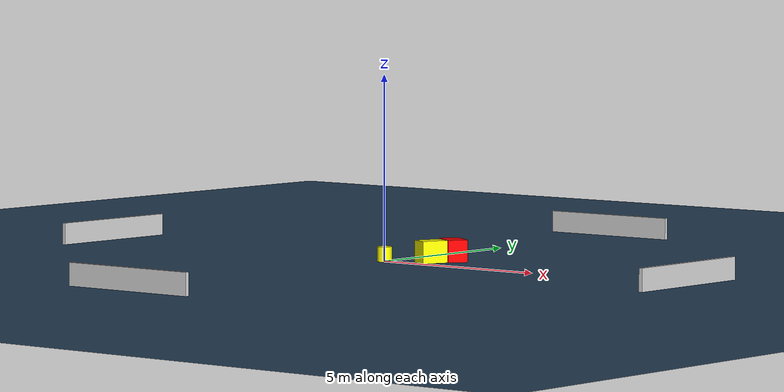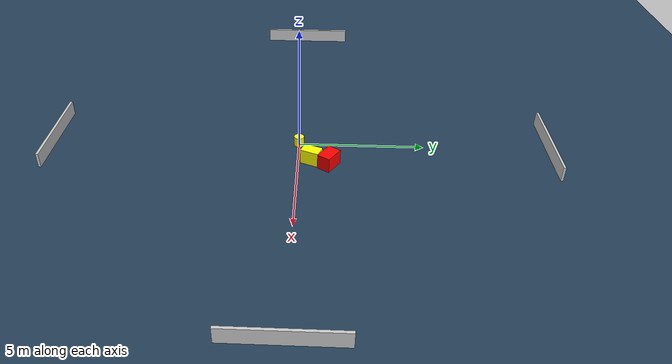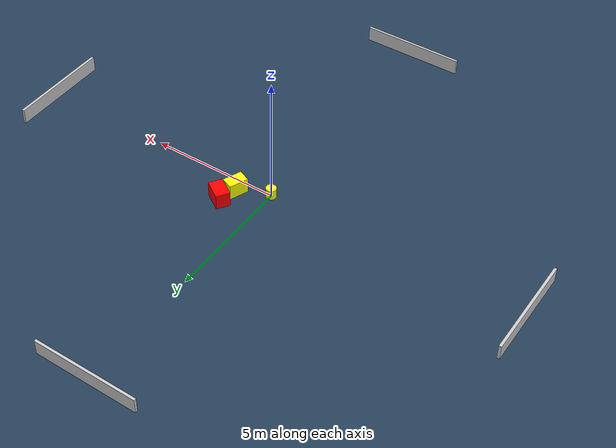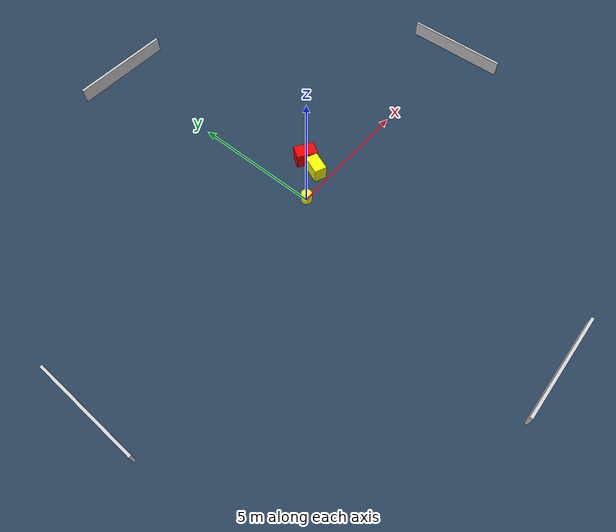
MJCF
<?xml version="1.0" ?>
<mujoco model="generated_environment">
  <option timestep="0.01" integrator="RK4" cone="elliptic"/>
  <default>
    <geom density="1"/>
  </default>
  <asset>
    <texture builtin="gradient" height="3072" name="skybox" rgb1="0.3 0.5 0.7" rgb2="0 0 0" type="skybox" width="512"/>
    <texture builtin="checker" height="300" name="groundplane" rgb1="0.2 0.3 0.4" rgb2="0.1 0.2 0.3" type="2d" width="300"/>
    <material name="groundplane" reflectance="0.2" texrepeat="5 5" texture="groundplane"/>
  </asset>
  <worldbody>
    <light dir="0 0 -1" directional="true" pos="0 0 1.5"/>
    <geom condim="3" friction="0.5 0.005 0.001" material="groundplane" name="floor" pos="0 0 0" size="0 0 0.05" type="plane"/>
    <body name="walls">
      <geom name="wall_1" condim="4" pos="-10.0 0.0 0.3" rgba="0.800000011920929 0.800000011920929 0.800000011920929 1.0" size="0.05 2.0 0.3" type="box"/>
      <geom name="wall_2" condim="4" pos="10.0 0.0 0.3" rgba="0.800000011920929 0.800000011920929 0.800000011920929 1.0" size="0.05 2.0 0.3" type="box"/>
      <geom name="wall_3" condim="4" pos="0.0 -10.0 0.3" rgba="0.800000011920929 0.800000011920929 0.800000011920929 1.0" size="2.0 0.05 0.3" type="box"/>
      <geom name="wall_4" condim="4" pos="0.0 10.0 0.3" rgba="0.800000011920929 0.800000011920929 0.800000011920929 1.0" size="2.0 0.05 0.3" type="box"/>
    </body>
    <body name="robot">
      <joint name="joint_x" type="slide" pos="0 0 0" axis="1 0 0"/>
      <joint name="joint_y" type="slide" pos="0 0 0" axis="0 1 0"/>
      <geom name="robot" type="cylinder" pos="0.0 0.0 0.2" size="0.2 0.2 0.0" mass="5.0" friction="1.0 0.005 0.0001" condim="4" rgba="1.0 1.0 0.0 1.0"/>
    </body>
    <body name="obstacle_1_movable">
      <geom name="obstacle_1_movable" condim="4" pos="1.1767647234594032 0.5299661358534913 0.3" euler="0 0 157.88779832355365" friction="0.0 0.005 0.001" rgba="1.0 1.0 0.0 1.0" size="0.23913307126920247 0.3767254559878841 0.3" type="box" mass="0.1"/>
      <joint type="free"/>
    </body>
    <body name="obstacle_2_static">
      <geom name="obstacle_2_static" condim="4" pos="1.3924769266438253 1.2114224259761983 0.3" euler="0 0 146.673335462432" friction="0.0 0.005 0.001" rgba="1.0 0.0 0.0 1.0" size="0.39494176226655986 0.26883577401245234 0.3" type="box"/>
    </body>
  </worldbody>
  <actuator>
    <motor name="actuator_x" joint="joint_x" gear="1" ctrlrange="-1 1"/>
    <motor name="actuator_y" joint="joint_y" gear="1" ctrlrange="-1 1"/>
  </actuator>
</mujoco>
